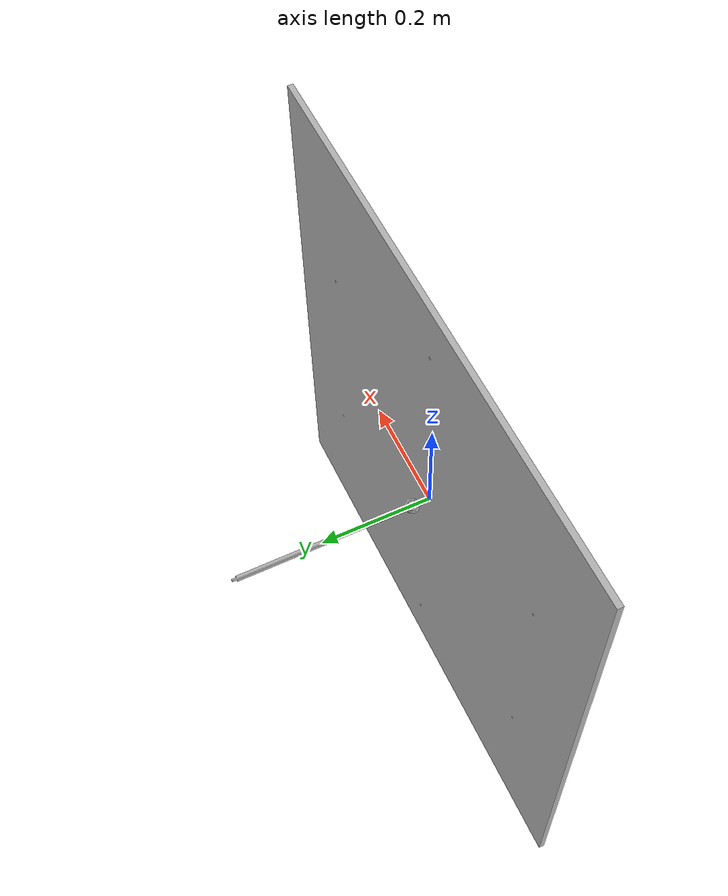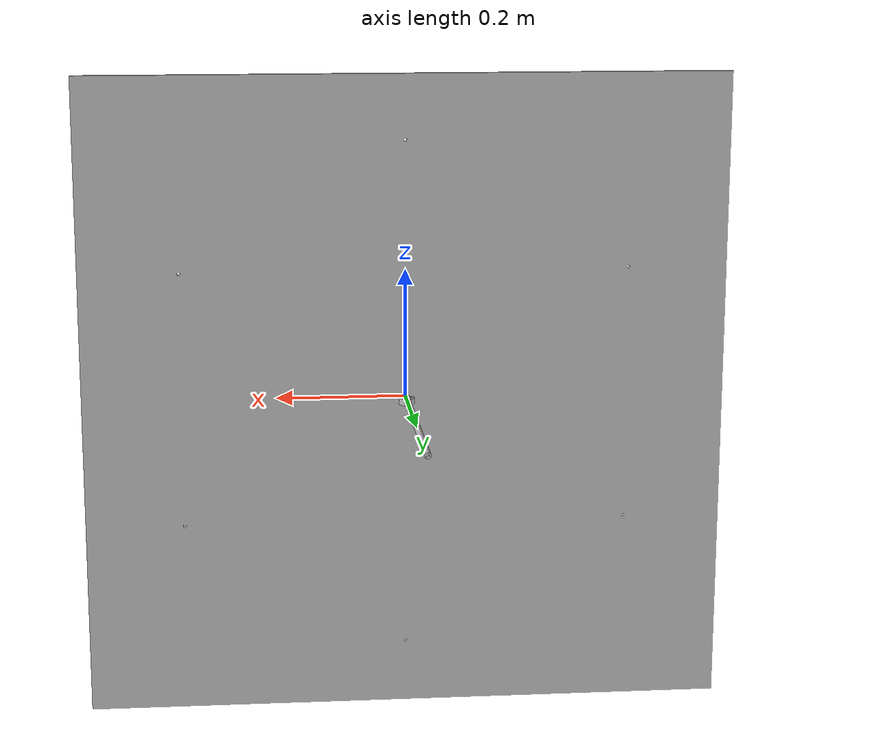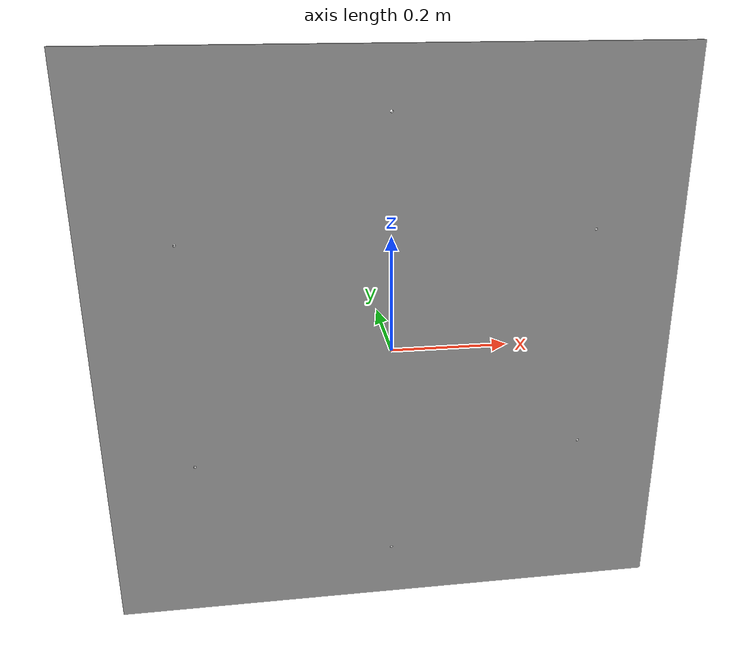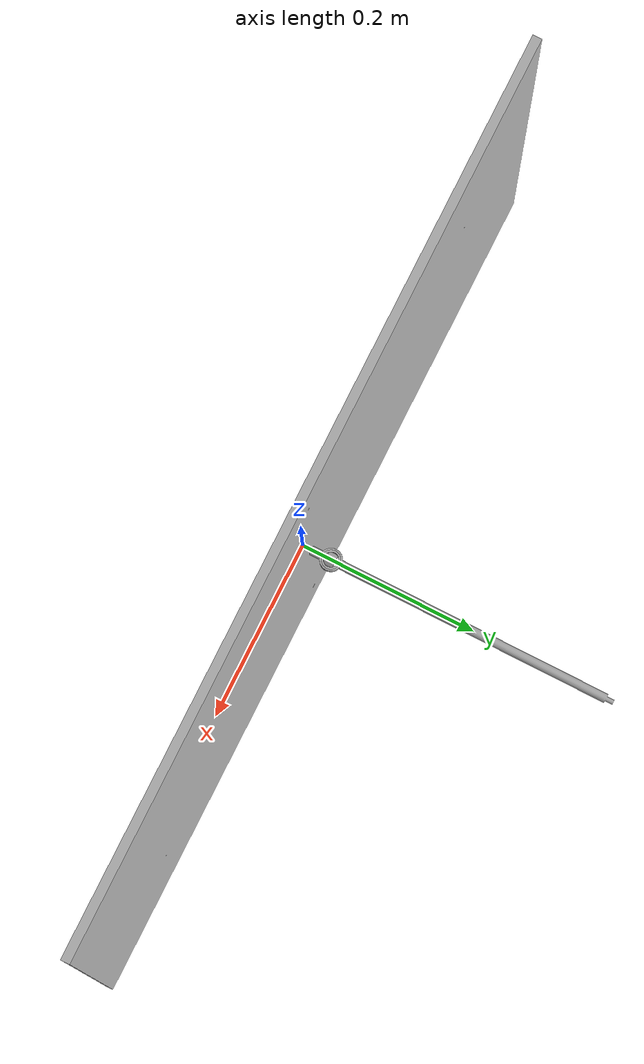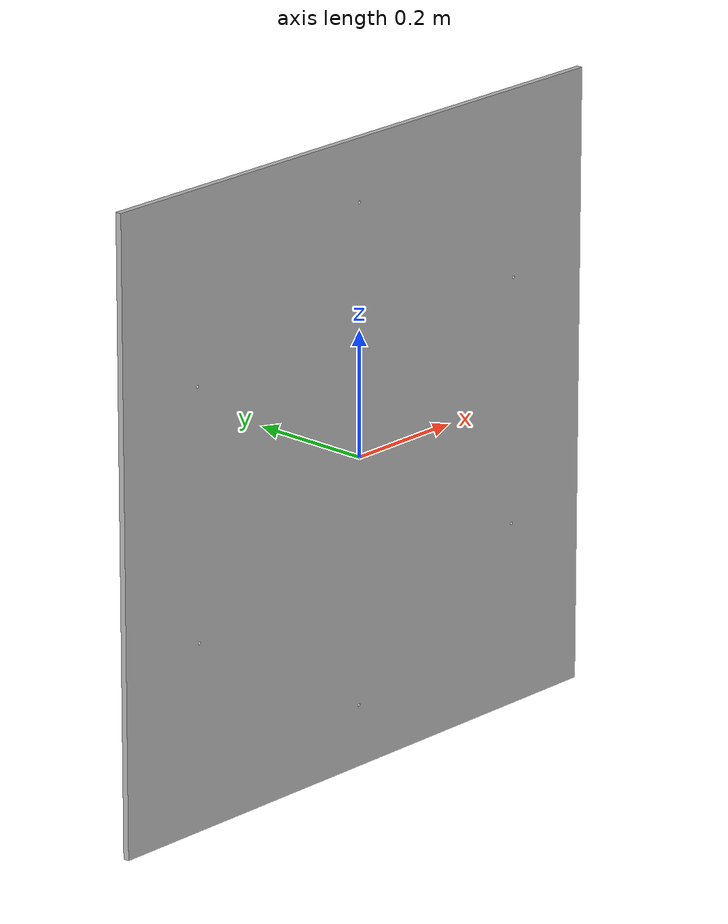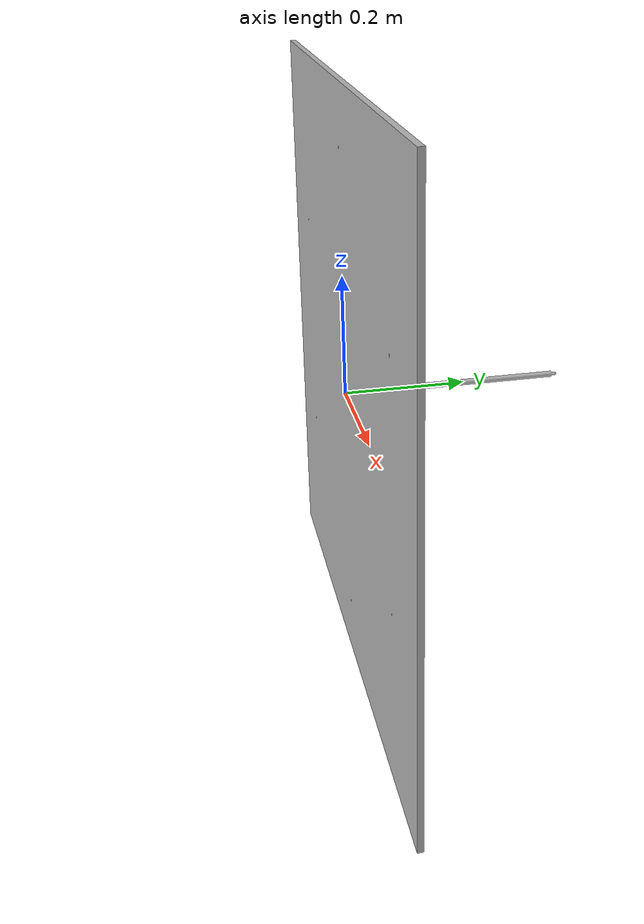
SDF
<?xml version="1.0" ?>
<sdf version="1.6">
	<model name="myo_test_bed_2dof">
		<link name="base_link">
			<pose frame="">0.0 0.01 0.0 0.0 -0.0 0.0</pose>
			<inertial>
				<pose frame="">0.0 0.0 0.0 0 0 0</pose>
				<mass>78.57185235709669</mass>
				<inertia>
					<ixx>6.5436157767287995</ixx>
					<ixy>6.403824702705758e-11</ixy>
					<ixz>1.6356742045632723e-07</ixz>
					<iyy>13.081856014264773</iyy>
					<iyz>1.2926320230557953e-11</iyz>
					<izz>6.543615803849883</izz>
				</inertia>
			</inertial>
			<collision name="base_link_collision">
				<geometry>
					<mesh>
						<uri>model://myo_test_bed_2dof/meshes/CAD/base_link.stl</uri>
						<scale>0.001 0.001 0.001</scale>
					</mesh>
				</geometry>
			</collision>
			<visual name="base_link_visual">
				<geometry>
					<mesh>
						<uri>model://myo_test_bed_2dof/meshes/CAD/base_link.stl</uri>
						<scale>0.001 0.001 0.001</scale>
					</mesh>
				</geometry>
			</visual>
		</link>
		<link name="link_1">
			<pose frame="">4.4408920985006264e-17 0.02800304289055365 2.6645352591003756e-17 0.0 -0.0 0.0</pose>
            <inertial>
                <pose frame="">0.0 0.0 0.0 0 0 0</pose>
                <mass>0.01</mass>
                <inertia>
                    <ixx>0.0833</ixx>
                    <ixy>0</ixy>
                    <ixz>0</ixz>
                    <iyy>0</iyy>
                    <iyz>0</iyz>
                    <izz>0.0833</izz>
                </inertia>
            </inertial>
			<collision name="link_1_collision">
				<geometry>
					<mesh>
						<uri>model://myo_test_bed_2dof/meshes/CAD/link_1.stl</uri>
						<scale>0.001 0.001 0.001</scale>
					</mesh>
				</geometry>
			</collision>
			<visual name="link_1_visual">
				<geometry>
					<mesh>
						<uri>model://myo_test_bed_2dof/meshes/CAD/link_1.stl</uri>
						<scale>0.001 0.001 0.001</scale>
					</mesh>
				</geometry>
			</visual>
		</link>
		<link name="link_2">
			<pose frame="">-0.00019695703494040435 0.1981951644416535 5.75040484626616e-05 0.0 -0.0 0.0</pose>
			<inertial>
				<pose frame="">0.0 0.0 0.0 0 0 0</pose>
				<mass>1</mass>
				<inertia>
					<ixx>0.0833</ixx>
					<ixy>0</ixy>
					<ixz>0</ixz>
					<iyy>0</iyy>
					<iyz>0</iyz>
					<izz>0.0833</izz>
                </inertia>
			</inertial>
			<collision name="link_2_collision">
				<geometry>
					<mesh>
						<uri>model://myo_test_bed_2dof/meshes/CAD/link_2.stl</uri>
						<scale>0.001 0.001 0.001</scale>
					</mesh>
				</geometry>
			</collision>
			<visual name="link_2_visual">
				<geometry>
					<mesh>
						<uri>model://myo_test_bed_2dof/meshes/CAD/link_2.stl</uri>
						<scale>0.001 0.001 0.001</scale>
					</mesh>
				</geometry>
			</visual>
		</link>
		<joint name="joint_1" type="revolute">
			<parent>base_link</parent>
			<child>link_1</child>
			<pose frame="">1.376676550535194e-16 0.005000000074505788 0.008060547013522167 0 0 0</pose>
			<axis>
				<xyz>-3.9898639947466563e-17 -2.7755575615628914e-17 1.0</xyz>
				<limit>
					<lower>-0.7853981633974483</lower>
					<upper>0.7853981633974483</upper>
				</limit>
				<use_parent_model_frame>0</use_parent_model_frame>
			</axis>
		</joint>
		<joint name="joint_2" type="revolute">
			<parent>link_1</parent>
			<child>link_2</child>
			<pose frame="">-0.010099999999999982 -0.16519212147659404 3.0429650595414395e-06 0 0 0</pose>
			<axis>
				<xyz>-1.0 5.697482416411327e-17 4.344745261320094e-16</xyz>
				<limit>
					<lower>-0.7853981633974483</lower>
					<upper>0.7853981633974483</upper>
				</limit>
				<use_parent_model_frame>0</use_parent_model_frame>
			</axis>
		</joint>

        <plugin name="joint_state_publisher" filename="libgazebo_ros_joint_state_publisher.so">
            <jointName>joint_1, joint_2</jointName>
            <updateRate>100.0</updateRate>
            <alwaysOn>true</alwaysOn>
        </plugin>

		<plugin filename="libmyomuscle_plugin.so" name="myomuscle_plugin">
			<myoMuscle name="motor0">
				<link name="base_link">
					<viaPoint type="FIXPOINT">-0.34641016151377557 0.0 0.19999999999999993</viaPoint>
				</link>
				<link name="link_2">
					<viaPoint type="FIXPOINT">0.0001969570349404251 0.16427803523774143 -5.7504048462629346e-05</viaPoint>
				</link>
			</myoMuscle>
			<myoMuscle name="motor1">
				<link name="base_link">
					<viaPoint type="FIXPOINT">-0.3464101615137754 0.0 -0.20000000000000004</viaPoint>
				</link>
				<link name="link_2">
					<viaPoint type="FIXPOINT">0.0001969570349404251 0.16427803523774143 -5.7504048462629346e-05</viaPoint>
				</link>
			</myoMuscle>
			<myoMuscle name="motor2">
				<link name="base_link">
					<viaPoint type="FIXPOINT">0.0 0.0 -0.4</viaPoint>
				</link>
				<link name="link_2">
					<viaPoint type="FIXPOINT">0.0001969570349404251 0.16427803523774143 -5.7504048462629346e-05</viaPoint>
				</link>
			</myoMuscle>
			<myoMuscle name="motor3">
				<link name="base_link">
					<viaPoint type="FIXPOINT">0.3464101615137756 0.0 -0.19999999999999973</viaPoint>
				</link>
				<link name="link_2">
					<viaPoint type="FIXPOINT">0.0001969570349404251 0.16427803523774143 -5.7504048462629346e-05</viaPoint>
				</link>
			</myoMuscle>
			<myoMuscle name="motor4">
				<link name="base_link">
					<viaPoint type="FIXPOINT">0.3464101615137754 0.0 0.20000000000000015</viaPoint>
				</link>
				<link name="link_2">
					<viaPoint type="FIXPOINT">0.0001969570349404251 0.16427803523774143 -5.7504048462629346e-05</viaPoint>
				</link>
			</myoMuscle>
			<myoMuscle name="motor5">
				<link name="base_link">
					<viaPoint type="FIXPOINT">-4.898587196589413e-17 0.0 0.4</viaPoint>
				</link>
				<link name="link_2">
					<viaPoint type="FIXPOINT">0.0001969570349404251 0.16427803523774143 -5.7504048462629346e-05</viaPoint>
				</link>
			</myoMuscle>
		</plugin>
	</model>
</sdf>
